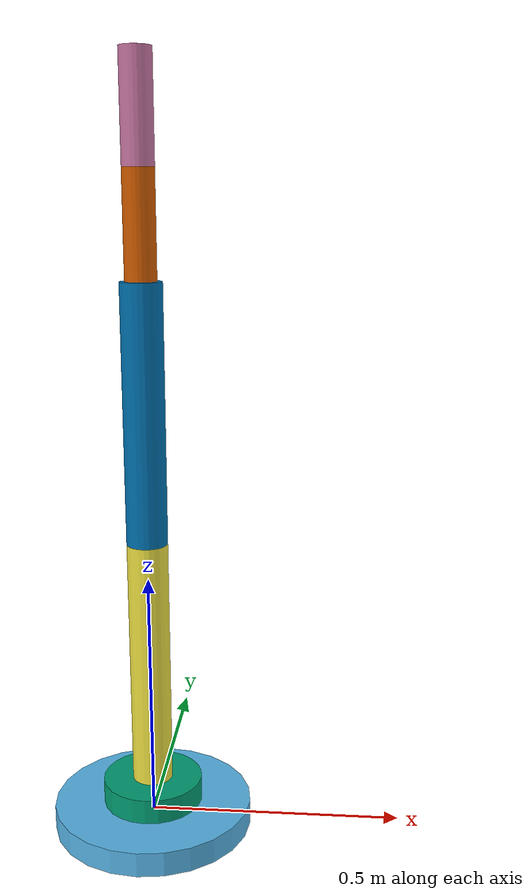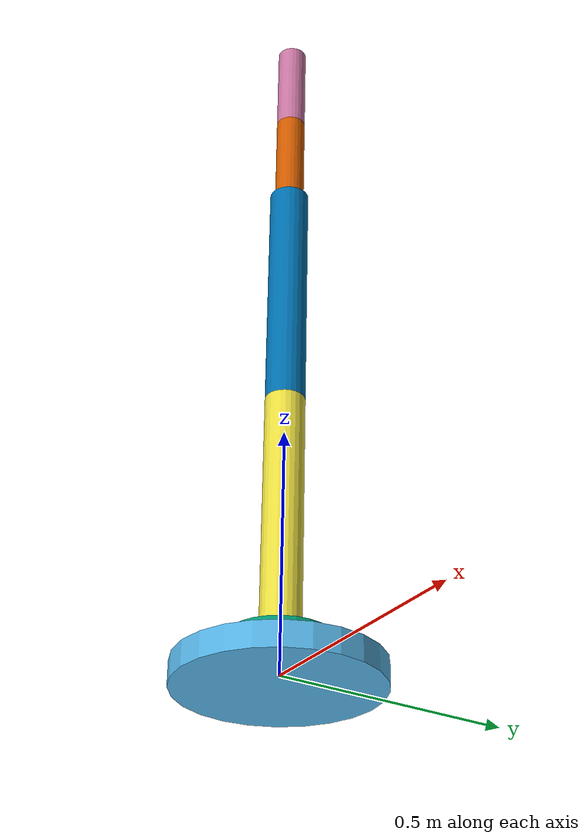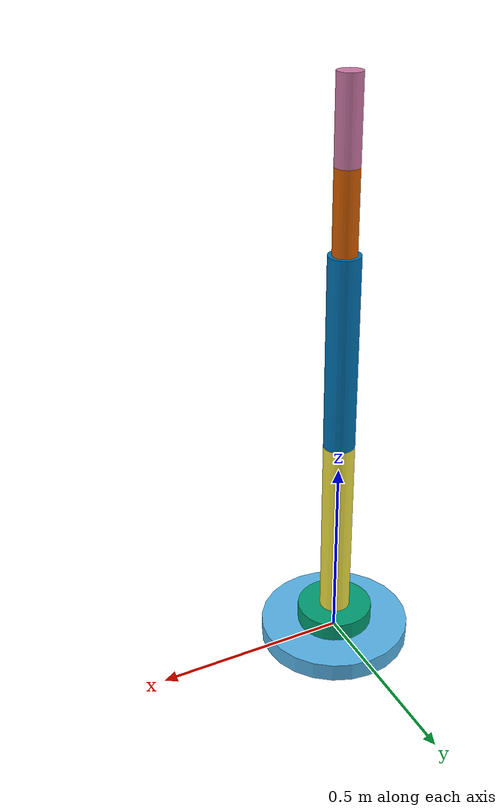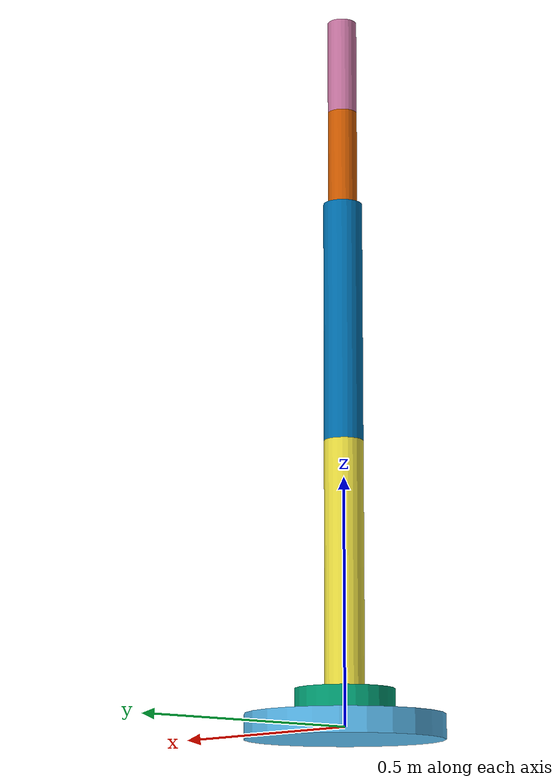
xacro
<?xml version="1.0"?>
<robot name="robot" xmlns:xacro="http://www.ros.org/wiki/xacro">
<!-- model params -->

<!-- geometry -->
<xacro:property name="base_link_length" value="0.05"/>
<xacro:property name="base_link_radius" value="0.2"/>

<xacro:property name="shoulder_yaw_link_length" value="0.05"/>
<xacro:property name="shoulder_yaw_link_radius" value="0.1"/>

<xacro:property name="shoulder_pitch_link_length" value="0.5"/>
<xacro:property name="shoulder_pitch_link_radius" value="0.04"/>

<xacro:property name="elbow_link_length" value="0.5"/>
<xacro:property name="elbow_link_radius" value="0.04"/>

<xacro:property name="wrist_link_length" value="0.2"/>
<xacro:property name="wrist_link_radius" value="0.03"/>

<!-- joint limits -->
<xacro:property name="limits_revolute_upper" value="3.14"/>
<xacro:property name="limits_revolute_lower" value="-3.14"/>
<xacro:property name="limits_revolute_velocity" value="1.57"/>
<xacro:property name="limits_revolute_effort" value="300"/>

<xacro:include filename="$(find robot_model_pkg)/urdf/robot_new.gazebo"/>

<!-- links and joint definitions -->
<!-- dummy link-joint to fix to world -->
<link name="world"/>

<joint name="world_fixed_joint" type="fixed">
  <parent link="world"/>
  <child link="base_link"/>
</joint>

<!-- robot -->
<link name="base_link">
    <visual>
        <geometry>
            <cylinder length="${base_link_length}" radius="${base_link_radius}"/>
        </geometry>
        <origin rpy="0 0 0" xyz="0 0 0"/>
    </visual>
    <collision>
        <geometry>
            <cylinder length="${base_link_length}" radius="${base_link_radius}"/>
        </geometry>
        <origin rpy="0 0 0" xyz="0 0 0"/>
    </collision>
    <inertial>
      <origin rpy="0 0 0" xyz="0 0 0"/>
      <mass value="1"/>
      <inertia ixx="30" ixy="0" ixz="0" iyy="30" iyz="0" izz="30"/>
    </inertial>
</link>

<joint name="joint_1" type="continuous">
    <parent link="base_link"/>
    <child link="shoulder_yaw_link"/>
    <origin xyz="0 0 ${base_link_length/2}"/>
    <axis xyz="0 0 1"/>
    <limit effort="${limits_revolute_effort}"
        velocity="${limits_revolute_velocity}"/>
    <dynamics damping="0.7"/>
</joint>

<link name="shoulder_yaw_link">
    <visual>
        <geometry>
            <cylinder length="${shoulder_yaw_link_length}"
            radius="${shoulder_yaw_link_radius}"/>
        </geometry>
        <origin rpy="0 0 0" xyz="0 0 ${shoulder_yaw_link_length/2}"/>
    </visual>
    <collision>
        <geometry>
            <cylinder length="${shoulder_yaw_link_length}"
            radius="${shoulder_yaw_link_radius}"/>
        </geometry>
        <origin rpy="0 0 0" xyz="0 0 ${shoulder_yaw_link_length/2}"/>
    </collision>
    <inertial>
        <origin rpy="0 0 0" xyz="0 0 ${shoulder_yaw_link_length/2}"/>
        <mass value="1"/>
        <inertia ixx="30" ixy="0" ixz="0" iyy="30" iyz="0" izz="30"/>
    </inertial>
</link>

<joint name="joint_2" type="continuous">
    <parent link="shoulder_yaw_link"/>
    <child link="shoulder_pitch_link"/>
    <origin xyz="0 0 ${shoulder_yaw_link_length}"/>
    <axis xyz="0 1 0"/>
    <limit effort="${limits_revolute_effort}"
        velocity="${limits_revolute_velocity}"/>
    <dynamics damping="0.7"/>
</joint>

<link name="shoulder_pitch_link">
    <visual>
        <geometry>
            <cylinder length="${shoulder_pitch_link_length}"
            radius="${shoulder_pitch_link_radius}"/>
        </geometry>
        <origin rpy="0 0 0" xyz="0 0 ${shoulder_pitch_link_length/2}"/>
    </visual>
    <collision>
        <geometry>
            <cylinder length="${shoulder_pitch_link_length}"
            radius="${shoulder_pitch_link_radius}"/>
        </geometry>
        <origin rpy="0 0 0" xyz="0 0 ${shoulder_pitch_link_length/2}"/>
    </collision>
    <inertial>
        <origin rpy="0 0 0" xyz="0 0 ${shoulder_pitch_link_length/2}"/>
        <mass value="1"/>
        <inertia ixx="30" ixy="0" ixz="0" iyy="30" iyz="0" izz="30"/>
    </inertial>
</link>

<joint name="joint_3" type="continuous">
    <parent link="shoulder_pitch_link"/>
    <child link="elbow_link"/>
    <origin xyz="0 0 ${shoulder_pitch_link_length}"/>
    <axis xyz="0 1 0"/>
    <limit effort="${limits_revolute_effort}"
        velocity="${limits_revolute_velocity}"/>
    <dynamics damping="0.7"/>
</joint>

<link name="elbow_link">
    <visual>
        <geometry>
            <cylinder length="${elbow_link_length}"
            radius="${elbow_link_radius}"/>
        </geometry>
        <origin rpy="0 0 0" xyz="0 0 ${elbow_link_length/2}"/>
    </visual>
    <collision>
        <geometry>
            <cylinder length="${elbow_link_length}"
            radius="${elbow_link_radius}"/>
        </geometry>
        <origin rpy="0 0 0" xyz="0 0 ${elbow_link_length/2}"/>
    </collision>
    <inertial>
        <origin rpy="0 0 0" xyz="0 0 ${elbow_link_length/2}"/>
        <mass value="1"/>
        <inertia ixx="30" ixy="0" ixz="0" iyy="30" iyz="0" izz="30"/>
    </inertial>
</link>

<joint name="joint_4" type="continuous">
    <parent link="elbow_link"/>
    <child link="wrist_link"/>
    <origin xyz="0 0 ${elbow_link_length}"/>
    <axis xyz="0 1 0"/>
    <limit effort="${limits_revolute_effort}"
        velocity="${limits_revolute_velocity}"/>
    <dynamics damping="0.7"/>
</joint>

<link name="wrist_link">
    <visual>
        <geometry>
            <cylinder length="${wrist_link_length}"
            radius="${wrist_link_radius}"/>
        </geometry>
        <origin rpy="0 0 0" xyz="0 0 ${wrist_link_length/2}"/>
    </visual>
    <collision>
        <geometry>
            <cylinder length="${wrist_link_length}"
            radius="${wrist_link_radius}"/>
        </geometry>
        <origin rpy="0 0 0" xyz="0 0 ${wrist_link_length/2}"/>
    </collision>
    <inertial>
        <origin rpy="0 0 0" xyz="0 0 ${wrist_link_length/2}"/>
        <mass value="1"/>
        <inertia ixx="30" ixy="0" ixz="0" iyy="30" iyz="0" izz="30"/>
    </inertial>
</link>

<joint name="joint_5" type="continuous">
    <parent link="wrist_link"/>
    <child link="gripper_link"/>
    <origin xyz="0 0 ${wrist_link_length}"/>
    <axis xyz="0 1 0"/>
    <limit effort="${limits_revolute_effort}"
        velocity="${limits_revolute_velocity}"/>
    <dynamics damping="0.7"/>
</joint>

<link name="gripper_link">
    <visual>
        <geometry>
            <cylinder length="${wrist_link_length}"
            radius="${wrist_link_radius}"/>
        </geometry>
        <origin rpy="0 0 0" xyz="0 0 ${wrist_link_length/2}"/>
    </visual>
    <collision>
        <geometry>
            <cylinder length="${wrist_link_length}"
            radius="${wrist_link_radius}"/>
        </geometry>
        <origin rpy="0 0 0" xyz="0 0 ${wrist_link_length/2}"/>
    </collision>
    <inertial>
        <origin rpy="0 0 0" xyz="0 0 ${wrist_link_length/2}"/>
        <mass value="1"/>
        <inertia ixx="30" ixy="0" ixz="0" iyy="30" iyz="0" izz="30"/>
    </inertial>
</link>

<transmission name="tran1">
    <type>transmission_interface/SimpleTransmission</type>
    <joint name="joint_1">
        <hardwareInterface>hardware_interface/PositionJointInterface</hardwareInterface>
    </joint>
    <actuator name="motor1">
        <hardwareInterface>hardware_interface/PositionJointInterface</hardwareInterface>
        <mechanicalReduction>1</mechanicalReduction>
    </actuator>
</transmission>

<transmission name="tran2">
    <type>transmission_interface/SimpleTransmission</type>
    <joint name="joint_2">
        <hardwareInterface>hardware_interface/PositionJointInterface</hardwareInterface>
    </joint>
    <actuator name="motor2">
        <hardwareInterface>hardware_interface/PositionJointInterface</hardwareInterface>
        <mechanicalReduction>1</mechanicalReduction>
    </actuator>
</transmission>

<transmission name="tran3">
    <type>transmission_interface/SimpleTransmission</type>
    <joint name="joint_3">
        <hardwareInterface>hardware_interface/PositionJointInterface</hardwareInterface>
    </joint>
    <actuator name="motor3">
        <hardwareInterface>hardware_interface/PositionJointInterface</hardwareInterface>
        <mechanicalReduction>1</mechanicalReduction>
    </actuator>
</transmission>

<transmission name="tran4">
    <type>transmission_interface/SimpleTransmission</type>
    <joint name="joint_4">
        <hardwareInterface>hardware_interface/PositionJointInterface</hardwareInterface>
    </joint>
    <actuator name="motor4">
        <hardwareInterface>hardware_interface/PositionJointInterface</hardwareInterface>
        <mechanicalReduction>1</mechanicalReduction>
    </actuator>
</transmission>

<transmission name="tran5">
    <type>transmission_interface/SimpleTransmission</type>
    <joint name="joint_5">
        <hardwareInterface>hardware_interface/PositionJointInterface</hardwareInterface>
    </joint>
    <actuator name="motor5">
        <hardwareInterface>hardware_interface/PositionJointInterface</hardwareInterface>
        <mechanicalReduction>1</mechanicalReduction>
    </actuator>
</transmission>

</robot>
